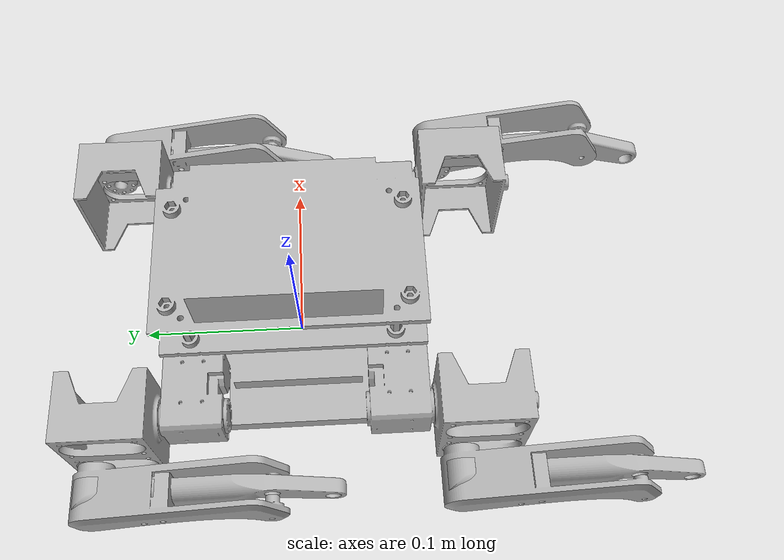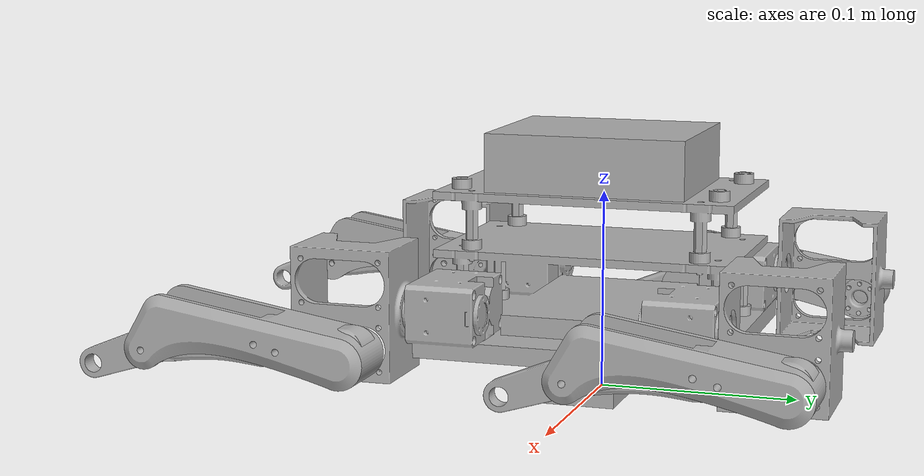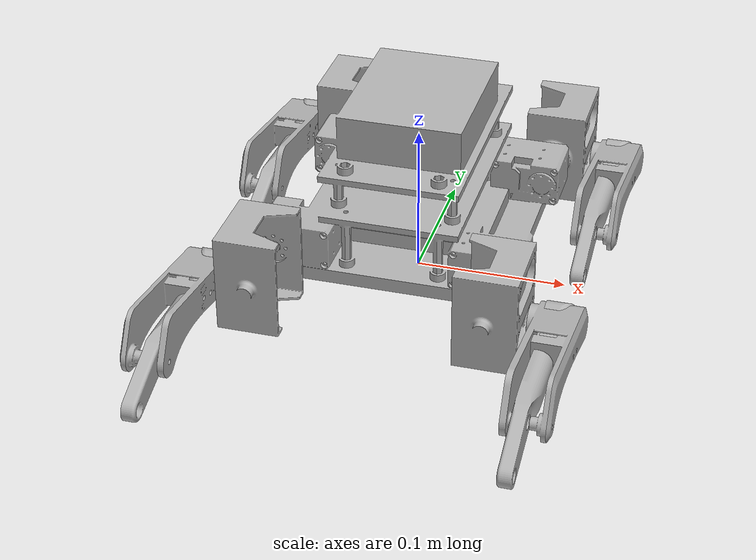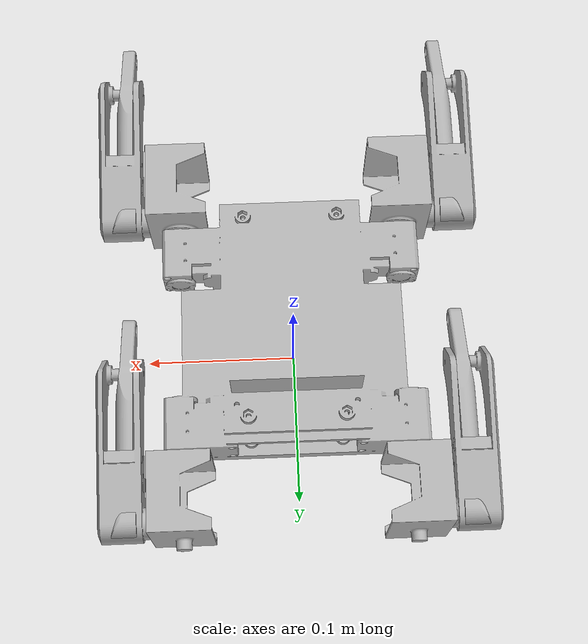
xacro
<?xml version="1.0"?>
<robot xmlns:xacro="http://www.ros.org/wiki/xacro"  name="kaqu">

    <xacro:include filename="gazebo_ros2_control_plugin.xacro" />

    <xacro:include filename="kaqu_link.xacro" />

    <xacro:include filename="kaqu_joint.xacro" />

    <xacro:include filename="kaqu.trans" />

    <xacro:include filename="kaqu.gazebo" />

</robot>

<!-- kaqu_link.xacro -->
<robot xmlns:xacro="http://www.ros.org/wiki/xacro">

  <xacro:include filename="$(find kaqu_gazebo_sim)/description/kaqu.trans" />
  <xacro:include filename="$(find kaqu_gazebo_sim)/description/kaqu.gazebo" />

  <material name="silver">
    <color rgba="0.700 0.700 0.700 1.000"/>
  </material>

  <link name="base_link">
    <inertial>
      <origin xyz="0 0 0.05" rpy="0 0 0"/>
      <mass value="1.0"/>
      <inertia ixx="0.00270833" iyy="0.00270" izz="0.00375" ixy="-0.0" iyz="0.0" ixz="0.0"/>
    </inertial>
    <visual>
      <origin xyz="0 0 0" rpy="0 0 0"/>
      <geometry>
        <mesh filename="file://$(find kaqu_gazebo_sim)/description/meshes/base_link.stl" scale="0.001 0.001 0.001"/>
      </geometry>
      <material name="silver"/>
    </visual>
    <collision>
      <origin xyz="0 0 0.05" rpy="0 0 0"/>
      <geometry>
        <box size="0.14 0.20 0.05"/>
      </geometry>
    </collision>
  </link>

  <link name="fl_hip_1">
    <inertial>
      <origin xyz="-0.005486394806764577 0.027831970392772562 2.095545958979983e-15" rpy="0 0 0"/>
      <mass value="0.2"/>
      <inertia ixx="0.00011802" iyy="0.00008468" izz="0.00008667" ixy="-0.0" iyz="0.0" ixz="0.0"/>
    </inertial>
    <visual>
      <origin xyz="0.074 -0.077 -0.04925" rpy="0 0 0"/>
      <geometry>
        <mesh filename="file://$(find kaqu_gazebo_sim)/description/meshes/fl_hip_1.stl" scale="0.001 0.001 0.001"/>
      </geometry>
      <material name="silver"/>
    </visual>
    <collision>
      <origin xyz="0.0 0.03 -0.0" rpy="0 0 0"/>
      <geometry>
        <box size="0.04 0.05 0.065"/>
      </geometry>
    </collision>
  </link>

  <link name="fr_hip_1">
    <inertial>
      <origin xyz="0.0054863948067643 0.027831970392771896 -2.7131075164277263e-15" rpy="0 0 0"/>
      <mass value="0.2"/>
      <inertia ixx="0.00011802" iyy="0.00008468" izz="0.00008667" ixy="-0.0" iyz="0.0" ixz="0.0"/>
    </inertial>
    <visual>
      <origin xyz="-0.074 -0.077 -0.04925" rpy="0 0 0"/>
      <geometry>
        <mesh filename="file://$(find kaqu_gazebo_sim)/description/meshes/fr_hip_1.stl" scale="0.001 0.001 0.001"/>
      </geometry>
      <material name="silver"/>
    </visual>
    <collision>
      <origin xyz="0.0 0.03 -0.0" rpy="0 0 0"/>
      <geometry>
        <box size="0.04 0.05 0.065"/>
      </geometry>
    </collision>
  </link>

  <link name="rl_hip_1">
    <inertial>
      <origin xyz="-0.005486394806764189 -0.027831970392772687 -2.609024107869118e-15" rpy="0 0 0"/>
      <mass value="0.2"/>
      <inertia ixx="0.00011802" iyy="0.00008468" izz="0.00008667" ixy="-0.0" iyz="0.0" ixz="0.0"/>
    </inertial>
    <visual>
      <origin xyz="0.074 0.077 -0.04925" rpy="0 0 0"/>
      <geometry>
        <mesh filename="file://$(find kaqu_gazebo_sim)/description/meshes/rl_hip_1.stl" scale="0.001 0.001 0.001"/>
      </geometry>
      <material name="silver"/>
    </visual>
    <collision>
      <origin xyz="0.0 -0.03 -0.0" rpy="0 0 0"/>
      <geometry>
        <box size="0.04 0.05 0.065"/>
      </geometry>
    </collision>
  </link>

  <link name="rr_hip_1">
    <inertial>
      <origin xyz="0.0054863948067643414 -0.027831970392772618 2.6229018956769323e-15" rpy="0 0 0"/>
      <mass value="0.2"/>
      <inertia ixx="0.00011802" iyy="0.00008468" izz="0.00008667" ixy="-0.0" iyz="0.0" ixz="0.0"/>
    </inertial>
    <visual>
      <origin xyz="-0.074 0.077 -0.04925" rpy="0 0 0"/>
      <geometry>
        <mesh filename="file://$(find kaqu_gazebo_sim)/description/meshes/rr_hip_1.stl" scale="0.001 0.001 0.001"/>
      </geometry>
      <material name="silver"/>
    </visual>
    <collision>
      <origin xyz="0.0 -0.03 -0.0" rpy="0 0 0"/>
      <geometry>
        <box size="0.04 0.05 0.065"/>
      </geometry>
    </collision>
  </link>

  <link name="fl_leg1_1">
    <inertial>
      <origin xyz="-0.020263589129523668 -0.04578146840181703 0.006603797190749286" rpy="0 0 0"/>
      <mass value="0.034644142991540894"/>
      <inertia ixx="4.3e-05" iyy="1e-05" izz="4.5e-05" ixy="0.0" iyz="0.0" ixz="0.0"/>
    </inertial>
    <visual>
      <origin xyz="0.095 -0.11625 -0.0335" rpy="0 0 0"/>
      <geometry>
        <mesh filename="file://$(find kaqu_gazebo_sim)/description/meshes/fl_leg1_1.stl" scale="0.001 0.001 0.001"/>
      </geometry>
      <material name="silver"/>
    </visual>
    <collision>
      <origin xyz="-0.02 -0.05 0.0" rpy="-1.5708 0 0"/>
      <geometry>
        <cylinder radius="0.015" length="0.10"/>
      </geometry>
    </collision>
  </link>

  <link name="rl_leg1_1">
    <inertial>
      <origin xyz="-0.020263589129523238 -0.045781468401814435 0.006603797190750112" rpy="0 0 0"/>
      <mass value="0.034644142991540894"/>
      <inertia ixx="4.3e-05" iyy="1e-05" izz="4.5e-05" ixy="0.0" iyz="0.0" ixz="0.0"/>
    </inertial>
    <visual>
      <origin xyz="0.095 0.09225 -0.0335" rpy="0 0 0"/>
      <geometry>
        <mesh filename="file://$(find kaqu_gazebo_sim)/description/meshes/rl_leg1_1.stl" scale="0.001 0.001 0.001"/>
      </geometry>
      <material name="silver"/>
    </visual>
    <collision>
      <origin xyz="-0.02 -0.05 0.0" rpy="-1.5708 0 0"/>
      <geometry>
        <cylinder radius="0.015" length="0.10"/>
      </geometry>
    </collision>
  </link>

  <link name="fr_leg1_1">
    <inertial>
      <origin xyz="0.020263589129523182 -0.04578146840181771 0.006603797190749952" rpy="0 0 0"/>
      <mass value="0.034644142991540894"/>
      <inertia ixx="4.3e-05" iyy="1e-05" izz="4.5e-05" ixy="0.0" iyz="0.0" ixz="0.0"/>
    </inertial>
    <visual>
      <origin xyz="-0.095 -0.11625 -0.0335" rpy="0 0 0"/>
      <geometry>
        <mesh filename="file://$(find kaqu_gazebo_sim)/description/meshes/fr_leg1_1.stl" scale="0.001 0.001 0.001"/>
      </geometry>
      <material name="silver"/>
    </visual>
    <collision>
      <origin xyz="0.02 -0.05 0.0" rpy="-1.5708 0 0"/>
      <geometry>
        <cylinder radius="0.015" length="0.10"/>
      </geometry>
    </collision>
  </link>

  <link name="rr_leg1_1">
    <inertial>
      <origin xyz="0.0202635891295235 -0.04578146840181438 0.006603797190749813" rpy="0 0 0"/>
      <mass value="0.034644142991540894"/>
      <inertia ixx="4.3e-05" iyy="1e-05" izz="4.5e-05" ixy="0.0" iyz="0.0" ixz="0.0"/>
    </inertial>
    <visual>
      <origin xyz="-0.095 0.09225 -0.0335" rpy="0 0 0"/>
      <geometry>
        <mesh filename="file://$(find kaqu_gazebo_sim)/description/meshes/rr_leg1_1.stl" scale="0.001 0.001 0.001"/>
      </geometry>
      <material name="silver"/>
    </visual>
    <collision>
      <origin xyz="0.02 -0.05 0.0" rpy="-1.5708 0 0"/>
      <geometry>
        <cylinder radius="0.015" length="0.10"/>
      </geometry>
    </collision>
  </link>

  <link name="fl_leg4_1">
    <inertial>
      <origin xyz="-0.0053895064642072305 0.033 -0.0" rpy="0 0 0"/>
      <mass value="0.03529"/>
      <inertia
        ixx="6.650e-5" ixy="0.0" ixz="0.0" iyy="1.0e-5" iyz="0.0" izz="6.565e-5"/>
    </inertial>
    <visual>
      <origin xyz="0.107 -0.01625 -0.0335" rpy="0 0 0"/>
      <geometry>
        <mesh filename="file://$(find kaqu_gazebo_sim)/description/meshes/fl_leg4_1_0.stl" scale="0.001 0.001 0.001"/>
      </geometry>
      <material name="silver"/>
    </visual>
    <collision>
      <origin xyz="-0.007 0.05 0.002" rpy="-1.5708 0 0"/>
      <geometry>
        <cylinder radius="0.01" length="0.10"/>
      </geometry>
    </collision>

    <collision>
      <origin xyz="-0.007 0.102 0.002" rpy="0 0 0"/>
      <geometry>
        <sphere radius="0.01"/>
      </geometry>
    </collision>
  </link>

  <link name="rl_leg4_1">
    <inertial>
      <origin xyz="-0.0053895064642072305 0.033 -0" rpy="0 0 0"/>
      <mass value="0.03529"/>
      <inertia
        ixx="6.650e-5" ixy="0.0" ixz="0.0" iyy="1.0e-5" iyz="0.0" izz="6.565e-5"/>
    </inertial>
    <visual>
      <origin xyz="0.107 0.19225 -0.0335" rpy="0 0 0"/>
      <geometry>
        <mesh filename="file://$(find kaqu_gazebo_sim)/description/meshes/rl_leg4_1_0.stl" scale="0.001 0.001 0.001"/>
      </geometry>
      <material name="silver"/>
    </visual>

    <collision>
      <origin xyz="-0.007 0.05 0.002" rpy="-1.5708 0 0"/>
      <geometry>
        <cylinder radius="0.01" length="0.10"/>
      </geometry>
    </collision>

      <collision>
      <origin xyz="-0.007 0.102 0.002" rpy="0 0 0"/>
      <geometry>
        <sphere radius="0.01"/>
      </geometry>
    </collision>
  </link>

  <link name="fr_leg4_1">
    <inertial>
      <origin xyz="0.0053895073648556335 0.033 -0.0" rpy="0 0 0"/>
      <mass value="0.03529"/>
      <inertia
        ixx="6.650e-5" ixy="0.0" ixz="0.0" iyy="1.0e-5" iyz="0.0" izz="6.565e-5"/>
    </inertial>
    <visual>
      <origin xyz="-0.107 -0.01625 -0.0335" rpy="0 0 0"/>
      <geometry>
        <mesh filename="file://$(find kaqu_gazebo_sim)/description/meshes/fr_leg4_1_0.stl" scale="0.001 0.001 0.001"/>
      </geometry>
      <material name="silver"/>
    </visual>

    <collision>
      <origin xyz="0.007 0.05 0.002" rpy="-1.5708 0 0"/>
      <geometry>
        <cylinder radius="0.01" length="0.10"/>
      </geometry>
    </collision>

    <collision>
      <origin xyz="0.007 0.102 0.002" rpy="0 0 0"/>
      <geometry>
        <sphere radius="0.01"/>
      </geometry>
    </collision>
  </link>

  <link name="rr_leg4_1">
    <inertial>
      <origin xyz="0.005389507364855939 0.033 -0" rpy="0 0 0"/>
      <mass value="0.03529"/>
      <inertia
        ixx="6.650e-5" ixy="0.0" ixz="0.0" iyy="1.0e-5" iyz="0.0" izz="6.565e-5"/>
    </inertial>
    <visual>
      <origin xyz="-0.107 0.19225 -0.0335" rpy="0 0 0"/>
      <geometry>
        <mesh filename="file://$(find kaqu_gazebo_sim)/description/meshes/rr_leg4_1_0.stl" scale="0.001 0.001 0.001"/>
      </geometry>
      <material name="silver"/>
    </visual>
    <collision>
      <origin xyz="0.007 0.05 0.002" rpy="-1.5708 0 0"/>
      <geometry>
        <cylinder radius="0.01" length="0.10"/>
      </geometry>
    </collision>

    <collision>
      <origin xyz="0.007 0.102 0.002" rpy="0 0 0"/>
      <geometry>
        <sphere radius="0.01"/>
      </geometry>
    </collision>
  </link>

</robot>

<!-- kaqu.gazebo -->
<robot xmlns:xacro="http://www.ros.org/wiki/xacro">

  <xacro:property name="body_color" value="Gazebo/Silver" />

    <!--mu1, mu2: 접촉면 마찰계수(서로 직각)
        kq:접촉 강성 kd: 감쇄 계수(스프링처럼)-->

  <gazebo reference="base_link">
    <material>${body_color}</material>
    <mu1>1.5</mu1>
    <mu2>1.5</mu2>
    <kp>100000.0</kp>
    <kd>1.0</kd>
    <gravity>true</gravity>
  </gazebo>

  <gazebo reference="fl_leg4_1">
    <material>${body_color}</material>
    <mu1>1.5</mu1>
    <mu2>1.5</mu2>
    <kp>100000.0</kp>
    <kd>1.0</kd>
    <contact>
      <!-- 엔진별 지원항목이 다르지만 아래 조합이 대체로 잘 먹음 -->
      <ode>
        <kp>5e6</kp>         <!-- 관통시 복원 강성 (너무 크면 튀어요) -->
        <kd>1.0</kd>         <!-- 접촉 감쇠 -->
        <min_depth>0.01</min_depth> <!-- 허용 관통: 작은 deadzone 효과 -->
        <max_vel>0.05</max_vel>       <!-- 해석기 안정화에 도움 -->
        <soft_cfm>1e-6</soft_cfm>
        <soft_erp>0.2</soft_erp>
      </ode>
    </contact>
  </gazebo>

  <gazebo reference="fr_leg4_1">
    <material>${body_color}</material>
    <mu1>1.5</mu1>
    <mu2>1.5</mu2>
    <kp>100000.0</kp>
    <kd>1.0</kd>
    <contact>
      <!-- 엔진별 지원항목이 다르지만 아래 조합이 대체로 잘 먹음 -->
      <ode>
        <kp>5e6</kp>         <!-- 관통시 복원 강성 (너무 크면 튀어요) -->
        <kd>1.0</kd>         <!-- 접촉 감쇠 -->
        <min_depth>0.01</min_depth> <!-- 허용 관통: 작은 deadzone 효과 -->
        <max_vel>0.05</max_vel>       <!-- 해석기 안정화에 도움 -->
        <soft_cfm>1e-6</soft_cfm>
        <soft_erp>0.2</soft_erp>
      </ode>
    </contact>
  </gazebo>

  <gazebo reference="rl_leg4_1">
    <material>${body_color}</material>
    <mu1>1.5</mu1>
    <mu2>1.5</mu2>
    <kp>100000.0</kp>
    <kd>1.0</kd>
    <contact>
      <!-- 엔진별 지원항목이 다르지만 아래 조합이 대체로 잘 먹음 -->
      <ode>
        <kp>5e6</kp>         <!-- 관통시 복원 강성 (너무 크면 튀어요) -->
        <kd>1.0</kd>         <!-- 접촉 감쇠 -->
        <min_depth>0.01</min_depth> <!-- 허용 관통: 작은 deadzone 효과 -->
        <max_vel>0.05</max_vel>       <!-- 해석기 안정화에 도움 -->
        <soft_cfm>1e-6</soft_cfm>
        <soft_erp>0.2</soft_erp>
      </ode>
    </contact>
  </gazebo>

  <gazebo reference="rr_leg4_1">
    <material>${body_color}</material>
    <mu1>1.5</mu1>
    <mu2>1.5</mu2>
    <kp>100000.0</kp>
    <kd>1.0</kd>
    <contact>
      <!-- 엔진별 지원항목이 다르지만 아래 조합이 대체로 잘 먹음 -->
      <ode>
        <kp>5e6</kp>         <!-- 관통시 복원 강성 (너무 크면 튀어요) -->
        <kd>1.0</kd>         <!-- 접촉 감쇠 -->
        <min_depth>0.01</min_depth> <!-- 허용 관통: 작은 deadzone 효과 -->
        <max_vel>0.05</max_vel>       <!-- 해석기 안정화에 도움 -->
        <soft_cfm>1e-6</soft_cfm>
        <soft_erp>0.2</soft_erp>
      </ode>
    </contact>
  </gazebo>

</robot>

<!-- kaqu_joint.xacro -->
<robot xmlns:xacro="http://www.ros.org/wiki/xacro">

    <xacro:include filename="$(find kaqu_gazebo_sim)/description/kaqu.gazebo" />
    <xacro:include filename="$(find kaqu_gazebo_sim)/description/kaqu.trans" />

    <xacro:property name="effort_limit" value="4.0" />
    <xacro:property name="velocity_limit" value="6.0" />

    <joint name="fl_mainbodyhip_joint" type="revolute">
        <origin xyz="-0.074 0.077 0.04925" rpy="0 0 0"/>
        <parent link="base_link"/>
        <child link="fl_hip_1"/>
        <axis xyz="-0.0 1.0 -0.0"/>
        <limit lower="-1.57" upper="1.57" effort="${effort_limit}" velocity="${velocity_limit}"/>

    </joint>

    <joint name="fr_mainbodyhip_joint" type="revolute">
        <origin xyz="0.074 0.077 0.04925" rpy="0 0 0"/>
        <parent link="base_link"/>
        <child link="fr_hip_1"/>
        <axis xyz="-0.0 1.0 -0.0"/>
        <limit lower="-1.57" upper="1.57" effort="${effort_limit}" velocity="${velocity_limit}"/>

    </joint>

    <joint name="rl_mainbodyhip_joint" type="revolute">
        <origin xyz="-0.074 -0.077 0.04925" rpy="0 0 0"/>
        <parent link="base_link"/>
        <child link="rl_hip_1"/>
        <axis xyz="0.0 1.0 -0.0"/>
        <limit lower="-1.57" upper="1.57" effort="${effort_limit}" velocity="${velocity_limit}"/>

    </joint>

    <joint name="rr_mainbodyhip_joint" type="revolute">
        <origin xyz="0.074 -0.077 0.04925" rpy="0 0 0"/>
        <parent link="base_link"/>
        <child link="rr_hip_1"/>
        <axis xyz="-0.0 1.0 0.0"/>
        <limit lower="-1.57" upper="1.57" effort="${effort_limit}" velocity="${velocity_limit}"/>

    </joint>

    <joint name="fl_hip1_joint" type="revolute">
        <origin xyz="-0.021 0.03925 -0.01575" rpy="0 0 0"/>
        <parent link="fl_hip_1"/>
        <child link="fl_leg1_1"/>
        <axis xyz="1.0 -0.0 0.0"/>
        <limit lower="-1.2217" upper="3.14" effort="${effort_limit}" velocity="${velocity_limit}"/>

    </joint>

    <joint name="rl_hip1_joint" type="revolute">
        <origin xyz="-0.021 -0.01525 -0.01575" rpy="0 0 0"/>
        <parent link="rl_hip_1"/>
        <child link="rl_leg1_1"/>
        <axis xyz="1.0 -0.0 -0.0"/>
        <limit lower="-1.2217" upper="3.14" effort="${effort_limit}" velocity="${velocity_limit}"/>

    </joint>

    <joint name="fr_hip1_joint" type="revolute">
        <origin xyz="0.021 0.03925 -0.01575" rpy="0 0 0"/>
        <parent link="fr_hip_1"/>
        <child link="fr_leg1_1"/>
        <axis xyz="1.0 0.0 0.0"/>
        <limit lower="-1.2217" upper="3.14" effort="${effort_limit}" velocity="${velocity_limit}"/>

    </joint>

    <joint name="rr_hip1_joint" type="revolute">
        <origin xyz="0.021 -0.01525 -0.01575" rpy="0 0 0"/>
        <parent link="rr_hip_1"/>
        <child link="rr_leg1_1"/>
        <axis xyz="1.0 -0.0 -0.0"/>
        <limit lower="-1.2217" upper="3.14" effort="${effort_limit}" velocity="${velocity_limit}"/>

    </joint>

    <joint name="fl_14_joint" type="revolute">
        <origin xyz="-0.012 -0.1 0.0" rpy="0 0 0"/>
        <parent link="fl_leg1_1"/>
        <child link="fl_leg4_1"/>
        <axis xyz="1.0 -0.0 0.0"/>
        <limit lower="-2.618" upper="1.57" effort="${effort_limit}" velocity="${velocity_limit}"/>

    </joint>

    <joint name="rl_14_joint" type="revolute">
        <origin xyz="-0.012 -0.1 0.0" rpy="0 0 0"/>
        <parent link="rl_leg1_1"/>
        <child link="rl_leg4_1"/>
        <axis xyz="1.0 -0.0 -0.0"/>
        <limit lower="-2.618" upper="1.57" effort="${effort_limit}" velocity="${velocity_limit}"/>

    </joint>

    <joint name="fr_14_joint" type="revolute">
        <origin xyz="0.012 -0.1 0.0" rpy="0 0 0"/>
        <parent link="fr_leg1_1"/>
        <child link="fr_leg4_1"/>
        <axis xyz="1.0 0.0 -0.0"/>
        <limit lower="-2.618" upper="1.57" effort="${effort_limit}" velocity="${velocity_limit}"/>

    </joint>

    <joint name="rr_14_joint" type="revolute">
        <origin xyz="0.012 -0.1 0.0" rpy="0 0 0"/>
        <parent link="rr_leg1_1"/>
        <child link="rr_leg4_1"/>
        <axis xyz="1.0 0.0 0.0"/>
        <limit lower="-2.618" upper="1.57" effort="${effort_limit}" velocity="${velocity_limit}"/>

    </joint>

</robot>
